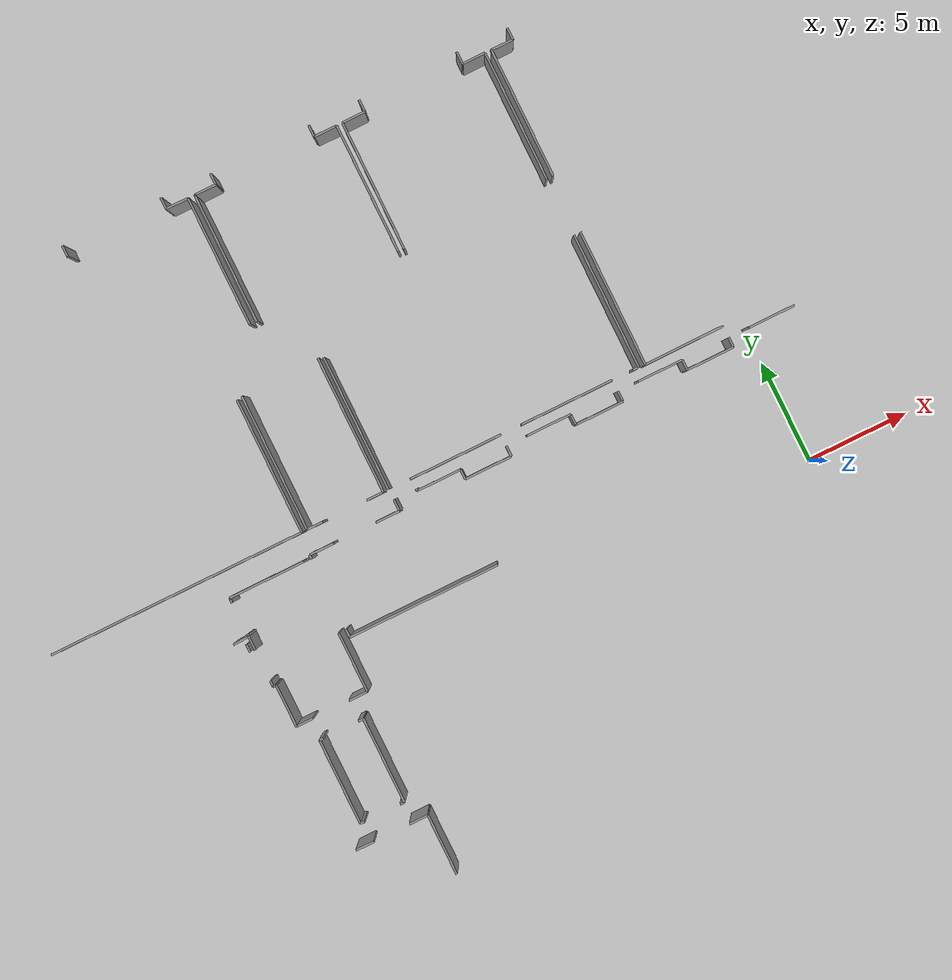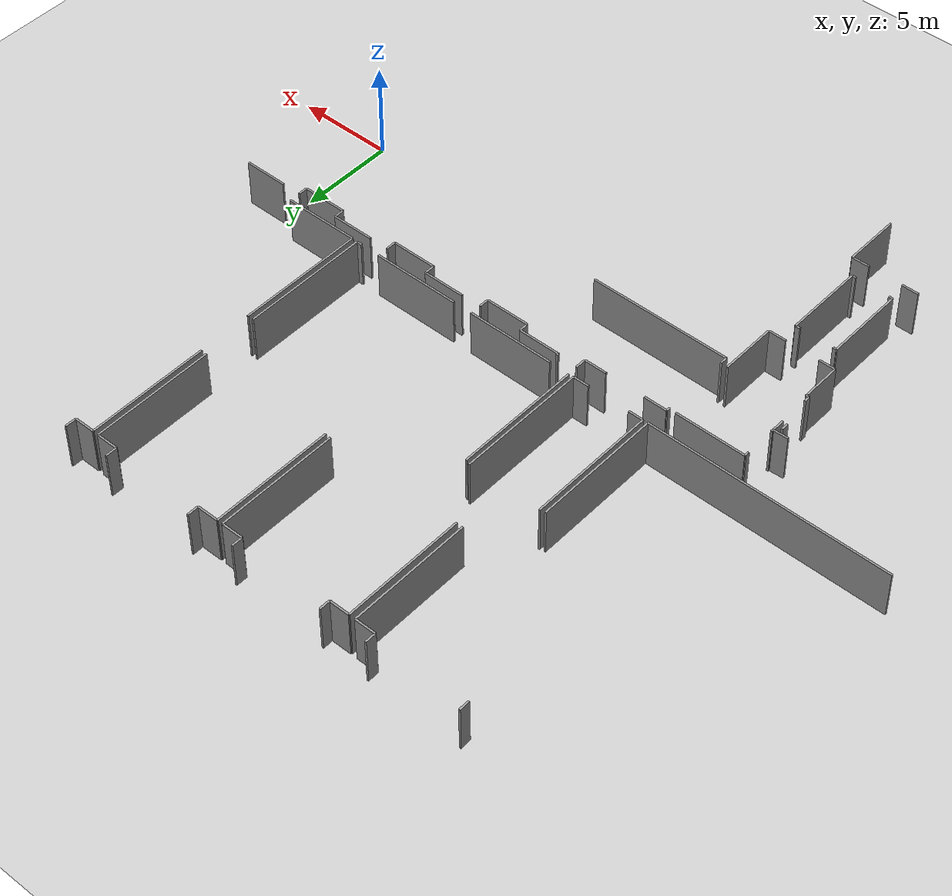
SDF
<sdf version="1.6">
 <world name="default">
  <model name="ground_plane">
   <static>1</static>
   <link name="link">
    <collision name="collision">
     <geometry><plane><normal>0 0 1</normal><size>100 100</size></plane></geometry>
     <surface><friction><ode><mu>100</mu><mu2>50</mu2></ode></friction></surface>
    </collision>
    <visual name="visual">
     <cast_shadows>0</cast_shadows>
     <geometry><plane><normal>0 0 1</normal><size>100 100</size></plane></geometry>
     <material>
      <script><uri>file://media/materials/scripts/gazebo.material</uri><name>Gazebo/Grey</name></script>
     </material>
    </visual>
   </link>
  </model>
  <model name="50045229">
   <static>1</static>
   <link name="Wall_26">
    <collision name="Wall_26_Collision">
     <geometry><box><size>6.7198466791 0.1 2.5</size></box></geometry>
     <pose>3.35992333955 0 1.25 0 0 0</pose>
    </collision>
    <visual name="Wall_26_Visual">
     <pose>3.35992333955 0 1.25 0 0 0</pose>
     <geometry><box><size>6.7198466791 0.1 2.5</size></box></geometry>
     <material>
      <script><uri>file://media/materials/scripts/gazebo.material</uri><name>Gazebo/Grey</name></script>
      <ambient>1 1 1 1</ambient>
     </material>
    </visual>
    <pose>28.746906294 -9.62964373199 0 0 0 -1.57079632679</pose>
   </link>
   <link name="Wall_27">
    <collision name="Wall_27_Collision">
     <geometry><box><size>0.831968929673 0.1 2.5</size></box></geometry>
     <pose>0.415984464836 0 1.25 0 0 0</pose>
    </collision>
    <visual name="Wall_27_Visual">
     <pose>0.415984464836 0 1.25 0 0 0</pose>
     <geometry><box><size>0.831968929673 0.1 2.5</size></box></geometry>
     <material>
      <script><uri>file://media/materials/scripts/gazebo.material</uri><name>Gazebo/Grey</name></script>
      <ambient>1 1 1 1</ambient>
     </material>
    </visual>
    <pose>28.746906294 -16.3494904111 0 0 0 3.14159265359</pose>
   </link>
   <link name="Wall_28">
    <collision name="Wall_28_Collision">
     <geometry><box><size>0.786911878562 0.1 2.5</size></box></geometry>
     <pose>0.393455939281 0 1.25 0 0 0</pose>
    </collision>
    <visual name="Wall_28_Visual">
     <pose>0.393455939281 0 1.25 0 0 0</pose>
     <geometry><box><size>0.786911878562 0.1 2.5</size></box></geometry>
     <material>
      <script><uri>file://media/materials/scripts/gazebo.material</uri><name>Gazebo/Grey</name></script>
      <ambient>1 1 1 1</ambient>
     </material>
    </visual>
    <pose>25.7049841983 -16.3494904111 0 0 0 3.14159265359</pose>
   </link>
   <link name="Wall_29">
    <collision name="Wall_29_Collision">
     <geometry><box><size>6.68456256584 0.1 2.5</size></box></geometry>
     <pose>3.34228128292 0 1.25 0 0 0</pose>
    </collision>
    <visual name="Wall_29_Visual">
     <pose>3.34228128292 0 1.25 0 0 0</pose>
     <geometry><box><size>6.68456256584 0.1 2.5</size></box></geometry>
     <material>
      <script><uri>file://media/materials/scripts/gazebo.material</uri><name>Gazebo/Grey</name></script>
      <ambient>1 1 1 1</ambient>
     </material>
    </visual>
    <pose>24.9180723197 -16.3494904111 0 0 0 1.57079632679</pose>
   </link>
   <link name="Wall_38">
    <collision name="Wall_38_Collision">
     <geometry><box><size>0.544365330186 0.1 2.5</size></box></geometry>
     <pose>0.272182665093 0 1.25 0 0 0</pose>
    </collision>
    <visual name="Wall_38_Visual">
     <pose>0.272182665093 0 1.25 0 0 0</pose>
     <geometry><box><size>0.544365330186 0.1 2.5</size></box></geometry>
     <material>
      <script><uri>file://media/materials/scripts/gazebo.material</uri><name>Gazebo/Grey</name></script>
      <ambient>1 1 1 1</ambient>
     </material>
    </visual>
    <pose>20.6436177639 -0.573303379913 0 0 0 1.57079632679</pose>
   </link>
   <link name="Wall_39">
    <collision name="Wall_39_Collision">
     <geometry><box><size>0.566068867481 0.1 2.5</size></box></geometry>
     <pose>0.283034433741 0 1.25 0 0 0</pose>
    </collision>
    <visual name="Wall_39_Visual">
     <pose>0.283034433741 0 1.25 0 0 0</pose>
     <geometry><box><size>0.566068867481 0.1 2.5</size></box></geometry>
     <material>
      <script><uri>file://media/materials/scripts/gazebo.material</uri><name>Gazebo/Grey</name></script>
      <ambient>1 1 1 1</ambient>
     </material>
    </visual>
    <pose>25.5781898488 -0.0289380497278 0 0 0 -1.57079632679</pose>
   </link>
   <link name="Wall_40">
    <collision name="Wall_40_Collision">
     <geometry><box><size>1.08847681783 0.1 2.5</size></box></geometry>
     <pose>0.544238408915 0 1.25 0 0 0</pose>
    </collision>
    <visual name="Wall_40_Visual">
     <pose>0.544238408915 0 1.25 0 0 0</pose>
     <geometry><box><size>1.08847681783 0.1 2.5</size></box></geometry>
     <material>
      <script><uri>file://media/materials/scripts/gazebo.material</uri><name>Gazebo/Grey</name></script>
      <ambient>1 1 1 1</ambient>
     </material>
    </visual>
    <pose>25.5781898488 -0.595006917209 0 0 0 0.0</pose>
   </link>
   <link name="Wall_41">
    <collision name="Wall_41_Collision">
     <geometry><box><size>6.3277868738 0.1 2.5</size></box></geometry>
     <pose>3.1638934369 0 1.25 0 0 0</pose>
    </collision>
    <visual name="Wall_41_Visual">
     <pose>3.1638934369 0 1.25 0 0 0</pose>
     <geometry><box><size>6.3277868738 0.1 2.5</size></box></geometry>
     <material>
      <script><uri>file://media/materials/scripts/gazebo.material</uri><name>Gazebo/Grey</name></script>
      <ambient>1 1 1 1</ambient>
     </material>
    </visual>
    <pose>26.6666666667 -0.595006917209 0 0 0 -1.57079632679</pose>
   </link>
   <link name="Wall_42">
    <collision name="Wall_42_Collision">
     <geometry><box><size>6.34060592215 0.1 2.5</size></box></geometry>
     <pose>3.17030296107 0 1.25 0 0 0</pose>
    </collision>
    <visual name="Wall_42_Visual">
     <pose>3.17030296107 0 1.25 0 0 0</pose>
     <geometry><box><size>6.34060592215 0.1 2.5</size></box></geometry>
     <material>
      <script><uri>file://media/materials/scripts/gazebo.material</uri><name>Gazebo/Grey</name></script>
      <ambient>1 1 1 1</ambient>
     </material>
    </visual>
    <pose>26.9995811598 -6.93675513079 0 0 0 1.57079632679</pose>
   </link>
   <link name="Wall_43">
    <collision name="Wall_43_Collision">
     <geometry><box><size>1.06372717004 0.1 2.5</size></box></geometry>
     <pose>0.531863585018 0 1.25 0 0 0</pose>
    </collision>
    <visual name="Wall_43_Visual">
     <pose>0.531863585018 0 1.25 0 0 0</pose>
     <geometry><box><size>1.06372717004 0.1 2.5</size></box></geometry>
     <material>
      <script><uri>file://media/materials/scripts/gazebo.material</uri><name>Gazebo/Grey</name></script>
      <ambient>1 1 1 1</ambient>
     </material>
    </visual>
    <pose>26.9995811598 -0.596149208646 0 0 0 0.0</pose>
   </link>
   <link name="Wall_44">
    <collision name="Wall_44_Collision">
     <geometry><box><size>0.565180418586 0.1 2.5</size></box></geometry>
     <pose>0.282590209293 0 1.25 0 0 0</pose>
    </collision>
    <visual name="Wall_44_Visual">
     <pose>0.282590209293 0 1.25 0 0 0</pose>
     <geometry><box><size>0.565180418586 0.1 2.5</size></box></geometry>
     <material>
      <script><uri>file://media/materials/scripts/gazebo.material</uri><name>Gazebo/Grey</name></script>
      <ambient>1 1 1 1</ambient>
     </material>
    </visual>
    <pose>28.0633083298 -0.596149208646 0 0 0 1.57079632679</pose>
   </link>
   <link name="Wall_45">
    <collision name="Wall_45_Collision">
     <geometry><box><size>0.570638033228 0.1 2.5</size></box></geometry>
     <pose>0.285319016614 0 1.25 0 0 0</pose>
    </collision>
    <visual name="Wall_45_Visual">
     <pose>0.285319016614 0 1.25 0 0 0</pose>
     <geometry><box><size>0.570638033228 0.1 2.5</size></box></geometry>
     <material>
      <script><uri>file://media/materials/scripts/gazebo.material</uri><name>Gazebo/Grey</name></script>
      <ambient>1 1 1 1</ambient>
     </material>
    </visual>
    <pose>32.9907728236 -0.0309687900595 0 0 0 -1.57079632679</pose>
   </link>
   <link name="Wall_46">
    <collision name="Wall_46_Collision">
     <geometry><box><size>1.12477630126 0.1 2.5</size></box></geometry>
     <pose>0.56238815063 0 1.25 0 0 0</pose>
    </collision>
    <visual name="Wall_46_Visual">
     <pose>0.56238815063 0 1.25 0 0 0</pose>
     <geometry><box><size>1.12477630126 0.1 2.5</size></box></geometry>
     <material>
      <script><uri>file://media/materials/scripts/gazebo.material</uri><name>Gazebo/Grey</name></script>
      <ambient>1 1 1 1</ambient>
     </material>
    </visual>
    <pose>32.9907728236 -0.601606823288 0 0 0 0.0</pose>
   </link>
   <link name="Wall_47">
    <collision name="Wall_47_Collision">
     <geometry><box><size>6.30938328955 0.1 2.5</size></box></geometry>
     <pose>3.15469164477 0 1.25 0 0 0</pose>
    </collision>
    <visual name="Wall_47_Visual">
     <pose>3.15469164477 0 1.25 0 0 0</pose>
     <geometry><box><size>6.30938328955 0.1 2.5</size></box></geometry>
     <material>
      <script><uri>file://media/materials/scripts/gazebo.material</uri><name>Gazebo/Grey</name></script>
      <ambient>1 1 1 1</ambient>
     </material>
    </visual>
    <pose>34.1155491249 -0.601606823288 0 0 0 -1.57079632679</pose>
   </link>
   <link name="Wall_48">
    <collision name="Wall_48_Collision">
     <geometry><box><size>6.34936348983 0.1 2.5</size></box></geometry>
     <pose>3.17468174491 0 1.25 0 0 0</pose>
    </collision>
    <visual name="Wall_48_Visual">
     <pose>3.17468174491 0 1.25 0 0 0</pose>
     <geometry><box><size>6.34936348983 0.1 2.5</size></box></geometry>
     <material>
      <script><uri>file://media/materials/scripts/gazebo.material</uri><name>Gazebo/Grey</name></script>
      <ambient>1 1 1 1</ambient>
     </material>
    </visual>
    <pose>34.4049296222 -6.94437040704 0 0 0 1.57079632679</pose>
   </link>
   <link name="Wall_49">
    <collision name="Wall_49_Collision">
     <geometry><box><size>1.12236479712 0.1 2.5</size></box></geometry>
     <pose>0.561182398558 0 1.25 0 0 0</pose>
    </collision>
    <visual name="Wall_49_Visual">
     <pose>0.561182398558 0 1.25 0 0 0</pose>
     <geometry><box><size>1.12236479712 0.1 2.5</size></box></geometry>
     <material>
      <script><uri>file://media/materials/scripts/gazebo.material</uri><name>Gazebo/Grey</name></script>
      <ambient>1 1 1 1</ambient>
     </material>
    </visual>
    <pose>34.4049296222 -0.595006917209 0 0 0 0.0</pose>
   </link>
   <link name="Wall_50">
    <collision name="Wall_50_Collision">
     <geometry><box><size>0.595006917209 0.1 2.5</size></box></geometry>
     <pose>0.297503458605 0 1.25 0 0 0</pose>
    </collision>
    <visual name="Wall_50_Visual">
     <pose>0.297503458605 0 1.25 0 0 0</pose>
     <geometry><box><size>0.595006917209 0.1 2.5</size></box></geometry>
     <material>
      <script><uri>file://media/materials/scripts/gazebo.material</uri><name>Gazebo/Grey</name></script>
      <ambient>1 1 1 1</ambient>
     </material>
    </visual>
    <pose>35.5272944193 -0.595006917209 0 0 0 1.57079632679</pose>
   </link>
   <link name="Wall_51">
    <collision name="Wall_51_Collision">
     <geometry><box><size>0.595006917209 0.1 2.5</size></box></geometry>
     <pose>0.297503458605 0 1.25 0 0 0</pose>
    </collision>
    <visual name="Wall_51_Visual">
     <pose>0.297503458605 0 1.25 0 0 0</pose>
     <geometry><box><size>0.595006917209 0.1 2.5</size></box></geometry>
     <material>
      <script><uri>file://media/materials/scripts/gazebo.material</uri><name>Gazebo/Grey</name></script>
      <ambient>1 1 1 1</ambient>
     </material>
    </visual>
    <pose>40.4255670208 -0.0 0 0 0 -1.57079632679</pose>
   </link>
   <link name="Wall_52">
    <collision name="Wall_52_Collision">
     <geometry><box><size>1.13201081369 0.1 2.5</size></box></geometry>
     <pose>0.566005406846 0 1.25 0 0 0</pose>
    </collision>
    <visual name="Wall_52_Visual">
     <pose>0.566005406846 0 1.25 0 0 0</pose>
     <geometry><box><size>1.13201081369 0.1 2.5</size></box></geometry>
     <material>
      <script><uri>file://media/materials/scripts/gazebo.material</uri><name>Gazebo/Grey</name></script>
      <ambient>1 1 1 1</ambient>
     </material>
    </visual>
    <pose>40.4255670208 -0.595006917209 0 0 0 0.0</pose>
   </link>
   <link name="Wall_53">
    <collision name="Wall_53_Collision">
     <geometry><box><size>6.31598319562 0.1 2.5</size></box></geometry>
     <pose>3.15799159781 0 1.25 0 0 0</pose>
    </collision>
    <visual name="Wall_53_Visual">
     <pose>3.15799159781 0 1.25 0 0 0</pose>
     <geometry><box><size>6.31598319562 0.1 2.5</size></box></geometry>
     <material>
      <script><uri>file://media/materials/scripts/gazebo.material</uri><name>Gazebo/Grey</name></script>
      <ambient>1 1 1 1</ambient>
     </material>
    </visual>
    <pose>41.5575778345 -0.595006917209 0 0 0 -1.57079632679</pose>
   </link>
   <link name="Wall_54">
    <collision name="Wall_54_Collision">
     <geometry><box><size>6.32309078678 0.1 2.5</size></box></geometry>
     <pose>3.16154539339 0 1.25 0 0 0</pose>
    </collision>
    <visual name="Wall_54_Visual">
     <pose>3.16154539339 0 1.25 0 0 0</pose>
     <geometry><box><size>6.32309078678 0.1 2.5</size></box></geometry>
     <material>
      <script><uri>file://media/materials/scripts/gazebo.material</uri><name>Gazebo/Grey</name></script>
      <ambient>1 1 1 1</ambient>
     </material>
    </visual>
    <pose>41.8694233967 -6.93015522471 0 0 0 1.57079632679</pose>
   </link>
   <link name="Wall_55">
    <collision name="Wall_55_Collision">
     <geometry><box><size>1.07502316313 0.1 2.5</size></box></geometry>
     <pose>0.537511581566 0 1.25 0 0 0</pose>
    </collision>
    <visual name="Wall_55_Visual">
     <pose>0.537511581566 0 1.25 0 0 0</pose>
     <geometry><box><size>1.07502316313 0.1 2.5</size></box></geometry>
     <material>
      <script><uri>file://media/materials/scripts/gazebo.material</uri><name>Gazebo/Grey</name></script>
      <ambient>1 1 1 1</ambient>
     </material>
    </visual>
    <pose>41.8694233967 -0.607064437929 0 0 0 0.0</pose>
   </link>
   <link name="Wall_56">
    <collision name="Wall_56_Collision">
     <geometry><box><size>0.587137798424 0.1 2.5</size></box></geometry>
     <pose>0.293568899212 0 1.25 0 0 0</pose>
    </collision>
    <visual name="Wall_56_Visual">
     <pose>0.293568899212 0 1.25 0 0 0</pose>
     <geometry><box><size>0.587137798424 0.1 2.5</size></box></geometry>
     <material>
      <script><uri>file://media/materials/scripts/gazebo.material</uri><name>Gazebo/Grey</name></script>
      <ambient>1 1 1 1</ambient>
     </material>
    </visual>
    <pose>42.9444465598 -0.607064437929 0 0 0 1.57079632679</pose>
   </link>
   <link name="Wall_124">
    <collision name="Wall_124_Collision">
     <geometry><box><size>6.64826308241 0.1 2.5</size></box></geometry>
     <pose>3.3241315412 0 1.25 0 0 0</pose>
    </collision>
    <visual name="Wall_124_Visual">
     <pose>3.3241315412 0 1.25 0 0 0</pose>
     <geometry><box><size>6.64826308241 0.1 2.5</size></box></geometry>
     <material>
      <script><uri>file://media/materials/scripts/gazebo.material</uri><name>Gazebo/Grey</name></script>
      <ambient>1 1 1 1</ambient>
     </material>
    </visual>
    <pose>41.8605389077 -16.3795707523 0 0 0 1.57079632679</pose>
   </link>
   <link name="Wall_127">
    <collision name="Wall_127_Collision">
     <geometry><box><size>3.91913579851 0.1 2.5</size></box></geometry>
     <pose>1.95956789925 0 1.25 0 0 0</pose>
    </collision>
    <visual name="Wall_127_Visual">
     <pose>1.95956789925 0 1.25 0 0 0</pose>
     <geometry><box><size>3.91913579851 0.1 2.5</size></box></geometry>
     <material>
      <script><uri>file://media/materials/scripts/gazebo.material</uri><name>Gazebo/Grey</name></script>
      <ambient>1 1 1 1</ambient>
     </material>
    </visual>
    <pose>45.7796139055 -16.3577402937 0 0 0 -3.13602240224</pose>
   </link>
   <link name="Wall_128">
    <collision name="Wall_128_Collision">
     <geometry><box><size>6.60485600782 0.1 2.5</size></box></geometry>
     <pose>3.30242800391 0 1.25 0 0 0</pose>
    </collision>
    <visual name="Wall_128_Visual">
     <pose>3.30242800391 0 1.25 0 0 0</pose>
     <geometry><box><size>6.60485600782 0.1 2.5</size></box></geometry>
     <material>
      <script><uri>file://media/materials/scripts/gazebo.material</uri><name>Gazebo/Grey</name></script>
      <ambient>1 1 1 1</ambient>
     </material>
    </visual>
    <pose>29.0006219142 -16.3370521266 0 0 0 1.57079632679</pose>
   </link>
   <link name="Wall_129">
    <collision name="Wall_129_Collision">
     <geometry><box><size>6.61970579649 0.1 2.5</size></box></geometry>
     <pose>3.30985289825 0 1.25 0 0 0</pose>
    </collision>
    <visual name="Wall_129_Visual">
     <pose>3.30985289825 0 1.25 0 0 0</pose>
     <geometry><box><size>6.61970579649 0.1 2.5</size></box></geometry>
     <material>
      <script><uri>file://media/materials/scripts/gazebo.material</uri><name>Gazebo/Grey</name></script>
      <ambient>1 1 1 1</ambient>
     </material>
    </visual>
    <pose>41.5485664242 -9.73219611875 0 0 0 -1.57079632679</pose>
   </link>
   <link name="Wall_130">
    <collision name="Wall_130_Collision">
     <geometry><box><size>0.286715150592 0.1 2.5</size></box></geometry>
     <pose>0.143357575296 0 1.25 0 0 0</pose>
    </collision>
    <visual name="Wall_130_Visual">
     <pose>0.143357575296 0 1.25 0 0 0</pose>
     <geometry><box><size>0.286715150592 0.1 2.5</size></box></geometry>
     <material>
      <script><uri>file://media/materials/scripts/gazebo.material</uri><name>Gazebo/Grey</name></script>
      <ambient>1 1 1 1</ambient>
     </material>
    </visual>
    <pose>41.5485664242 -16.3519019152 0 0 0 3.14159265359</pose>
   </link>
   <link name="Wall_131">
    <collision name="Wall_131_Collision">
     <geometry><box><size>4.56243891914 0.1 2.5</size></box></geometry>
     <pose>2.28121945957 0 1.25 0 0 0</pose>
    </collision>
    <visual name="Wall_131_Visual">
     <pose>2.28121945957 0 1.25 0 0 0</pose>
     <geometry><box><size>4.56243891914 0.1 2.5</size></box></geometry>
     <material>
      <script><uri>file://media/materials/scripts/gazebo.material</uri><name>Gazebo/Grey</name></script>
      <ambient>1 1 1 1</ambient>
     </material>
    </visual>
    <pose>40.2254121768 -16.3519019152 0 0 0 3.14159265359</pose>
   </link>
   <link name="Wall_132">
    <collision name="Wall_132_Collision">
     <geometry><box><size>4.5673888487 0.1 2.5</size></box></geometry>
     <pose>2.28369442435 0 1.25 0 0 0</pose>
    </collision>
    <visual name="Wall_132_Visual">
     <pose>2.28369442435 0 1.25 0 0 0</pose>
     <geometry><box><size>4.5673888487 0.1 2.5</size></box></geometry>
     <material>
      <script><uri>file://media/materials/scripts/gazebo.material</uri><name>Gazebo/Grey</name></script>
      <ambient>1 1 1 1</ambient>
     </material>
    </visual>
    <pose>34.6495069109 -16.3519019152 0 0 0 3.14159265359</pose>
   </link>
   <link name="Wall_134">
    <collision name="Wall_134_Collision">
     <geometry><box><size>6.63506327025 0.1 2.5</size></box></geometry>
     <pose>3.31753163513 0 1.25 0 0 0</pose>
    </collision>
    <visual name="Wall_134_Visual">
     <pose>3.31753163513 0 1.25 0 0 0</pose>
     <geometry><box><size>6.63506327025 0.1 2.5</size></box></geometry>
     <material>
      <script><uri>file://media/materials/scripts/gazebo.material</uri><name>Gazebo/Grey</name></script>
      <ambient>1 1 1 1</ambient>
     </material>
    </visual>
    <pose>24.6521722575 -9.72407315742 0 0 0 -1.57079632679</pose>
   </link>
   <link name="Wall_135">
    <collision name="Wall_135_Collision">
     <geometry><box><size>12.5558138604 0.1 2.5</size></box></geometry>
     <pose>6.27790693019 0 1.25 0 0 0</pose>
    </collision>
    <visual name="Wall_135_Visual">
     <pose>6.27790693019 0 1.25 0 0 0</pose>
     <geometry><box><size>12.5558138604 0.1 2.5</size></box></geometry>
     <material>
      <script><uri>file://media/materials/scripts/gazebo.material</uri><name>Gazebo/Grey</name></script>
      <ambient>1 1 1 1</ambient>
     </material>
    </visual>
    <pose>24.6521722575 -16.3591364277 0 0 0 -3.14140059084</pose>
   </link>
   <link name="Wall_177">
    <collision name="Wall_177_Collision">
     <geometry><box><size>0.886291233548 0.1 2.5</size></box></geometry>
     <pose>0.443145616774 0 1.25 0 0 0</pose>
    </collision>
    <visual name="Wall_177_Visual">
     <pose>0.443145616774 0 1.25 0 0 0</pose>
     <geometry><box><size>0.886291233548 0.1 2.5</size></box></geometry>
     <material>
      <script><uri>file://media/materials/scripts/gazebo.material</uri><name>Gazebo/Grey</name></script>
      <ambient>1 1 1 1</ambient>
     </material>
    </visual>
    <pose>20.5576920636 -30.2964880884 0 0 0 0.0</pose>
   </link>
   <link name="Wall_178">
    <collision name="Wall_178_Collision">
     <geometry><box><size>0.919544606481 0.1 2.5</size></box></geometry>
     <pose>0.45977230324 0 1.25 0 0 0</pose>
    </collision>
    <visual name="Wall_178_Visual">
     <pose>0.45977230324 0 1.25 0 0 0</pose>
     <geometry><box><size>0.919544606481 0.1 2.5</size></box></geometry>
     <material>
      <script><uri>file://media/materials/scripts/gazebo.material</uri><name>Gazebo/Grey</name></script>
      <ambient>1 1 1 1</ambient>
     </material>
    </visual>
    <pose>23.2323040018 -30.2964880884 0 0 0 0.0</pose>
   </link>
   <link name="Wall_179">
    <collision name="Wall_179_Collision">
     <geometry><box><size>2.95980403356 0.1 2.5</size></box></geometry>
     <pose>1.47990201678 0 1.25 0 0 0</pose>
    </collision>
    <visual name="Wall_179_Visual">
     <pose>1.47990201678 0 1.25 0 0 0</pose>
     <geometry><box><size>2.95980403356 0.1 2.5</size></box></geometry>
     <material>
      <script><uri>file://media/materials/scripts/gazebo.material</uri><name>Gazebo/Grey</name></script>
      <ambient>1 1 1 1</ambient>
     </material>
    </visual>
    <pose>24.1518486083 -30.2964880884 0 0 0 -1.57079632679</pose>
   </link>
   <link name="Wall_221">
    <collision name="Wall_221_Collision">
     <geometry><box><size>4.17507520085 0.1 2.5</size></box></geometry>
     <pose>2.08753760043 0 1.25 0 0 0</pose>
    </collision>
    <visual name="Wall_221_Visual">
     <pose>2.08753760043 0 1.25 0 0 0</pose>
     <geometry><box><size>4.17507520085 0.1 2.5</size></box></geometry>
     <material>
      <script><uri>file://media/materials/scripts/gazebo.material</uri><name>Gazebo/Grey</name></script>
      <ambient>1 1 1 1</ambient>
     </material>
    </visual>
    <pose>21.2567744228 -29.2973638452 0 0 0 1.57079632679</pose>
   </link>
   <link name="Wall_222">
    <collision name="Wall_222_Collision">
     <geometry><box><size>0.183782000025 0.1 2.5</size></box></geometry>
     <pose>0.0918910000127 0 1.25 0 0 0</pose>
    </collision>
    <visual name="Wall_222_Visual">
     <pose>0.0918910000127 0 1.25 0 0 0</pose>
     <geometry><box><size>0.183782000025 0.1 2.5</size></box></geometry>
     <material>
      <script><uri>file://media/materials/scripts/gazebo.material</uri><name>Gazebo/Grey</name></script>
      <ambient>1 1 1 1</ambient>
     </material>
    </visual>
    <pose>21.2567744228 -25.1222886444 0 0 0 0.0</pose>
   </link>
   <link name="Wall_223">
    <collision name="Wall_223_Collision">
     <geometry><box><size>0.253842541472 0.1 2.5</size></box></geometry>
     <pose>0.126921270736 0 1.25 0 0 0</pose>
    </collision>
    <visual name="Wall_223_Visual">
     <pose>0.126921270736 0 1.25 0 0 0</pose>
     <geometry><box><size>0.253842541472 0.1 2.5</size></box></geometry>
     <material>
      <script><uri>file://media/materials/scripts/gazebo.material</uri><name>Gazebo/Grey</name></script>
      <ambient>1 1 1 1</ambient>
     </material>
    </visual>
    <pose>23.2031121096 -25.1222886444 0 0 0 0.0</pose>
   </link>
   <link name="Wall_224">
    <collision name="Wall_224_Collision">
     <geometry><box><size>4.18573658759 0.1 2.5</size></box></geometry>
     <pose>2.0928682938 0 1.25 0 0 0</pose>
    </collision>
    <visual name="Wall_224_Visual">
     <pose>2.0928682938 0 1.25 0 0 0</pose>
     <geometry><box><size>4.18573658759 0.1 2.5</size></box></geometry>
     <material>
      <script><uri>file://media/materials/scripts/gazebo.material</uri><name>Gazebo/Grey</name></script>
      <ambient>1 1 1 1</ambient>
     </material>
    </visual>
    <pose>23.456954651 -25.1222886444 0 0 0 -1.57079632679</pose>
   </link>
   <link name="Wall_225">
    <collision name="Wall_225_Collision">
     <geometry><box><size>0.20878549036 0.1 2.5</size></box></geometry>
     <pose>0.10439274518 0 1.25 0 0 0</pose>
    </collision>
    <visual name="Wall_225_Visual">
     <pose>0.10439274518 0 1.25 0 0 0</pose>
     <geometry><box><size>0.20878549036 0.1 2.5</size></box></geometry>
     <material>
      <script><uri>file://media/materials/scripts/gazebo.material</uri><name>Gazebo/Grey</name></script>
      <ambient>1 1 1 1</ambient>
     </material>
    </visual>
    <pose>23.456954651 -29.3080252319 0 0 0 3.14159265359</pose>
   </link>
   <link name="Wall_226">
    <collision name="Wall_226_Collision">
     <geometry><box><size>0.206649189096 0.1 2.5</size></box></geometry>
     <pose>0.103324594548 0 1.25 0 0 0</pose>
    </collision>
    <visual name="Wall_226_Visual">
     <pose>0.103324594548 0 1.25 0 0 0</pose>
     <geometry><box><size>0.206649189096 0.1 2.5</size></box></geometry>
     <material>
      <script><uri>file://media/materials/scripts/gazebo.material</uri><name>Gazebo/Grey</name></script>
      <ambient>1 1 1 1</ambient>
     </material>
    </visual>
    <pose>21.463148409 -29.3080252319 0 0 0 3.08997802088</pose>
   </link>
   <link name="Wall_227">
    <collision name="Wall_227_Collision">
     <geometry><box><size>2.06691289393 0.1 2.5</size></box></geometry>
     <pose>1.03345644697 0 1.25 0 0 0</pose>
    </collision>
    <visual name="Wall_227_Visual">
     <pose>1.03345644697 0 1.25 0 0 0</pose>
     <geometry><box><size>2.06691289393 0.1 2.5</size></box></geometry>
     <material>
      <script><uri>file://media/materials/scripts/gazebo.material</uri><name>Gazebo/Grey</name></script>
      <ambient>1 1 1 1</ambient>
     </material>
    </visual>
    <pose>20.5904377515 -24.1128837782 0 0 0 1.57079632679</pose>
   </link>
   <link name="Wall_228">
    <collision name="Wall_228_Collision">
     <geometry><box><size>0.15002094201 0.1 2.5</size></box></geometry>
     <pose>0.0750104710048 0 1.25 0 0 0</pose>
    </collision>
    <visual name="Wall_228_Visual">
     <pose>0.0750104710048 0 1.25 0 0 0</pose>
     <geometry><box><size>0.15002094201 0.1 2.5</size></box></geometry>
     <material>
      <script><uri>file://media/materials/scripts/gazebo.material</uri><name>Gazebo/Grey</name></script>
      <ambient>1 1 1 1</ambient>
     </material>
    </visual>
    <pose>20.5904377515 -22.0459708843 0 0 0 3.14159265359</pose>
   </link>
   <link name="Wall_229">
    <collision name="Wall_229_Collision">
     <geometry><box><size>0.297503458605 0.1 2.5</size></box></geometry>
     <pose>0.148751729302 0 1.25 0 0 0</pose>
    </collision>
    <visual name="Wall_229_Visual">
     <pose>0.148751729302 0 1.25 0 0 0</pose>
     <geometry><box><size>0.297503458605 0.1 2.5</size></box></geometry>
     <material>
      <script><uri>file://media/materials/scripts/gazebo.material</uri><name>Gazebo/Grey</name></script>
      <ambient>1 1 1 1</ambient>
     </material>
    </visual>
    <pose>20.4404168095 -22.0459708843 0 0 0 1.57079632679</pose>
   </link>
   <link name="Wall_230">
    <collision name="Wall_230_Collision">
     <geometry><box><size>0.781327342649 0.1 2.5</size></box></geometry>
     <pose>0.390663671325 0 1.25 0 0 0</pose>
    </collision>
    <visual name="Wall_230_Visual">
     <pose>0.390663671325 0 1.25 0 0 0</pose>
     <geometry><box><size>0.781327342649 0.1 2.5</size></box></geometry>
     <material>
      <script><uri>file://media/materials/scripts/gazebo.material</uri><name>Gazebo/Grey</name></script>
      <ambient>1 1 1 1</ambient>
     </material>
    </visual>
    <pose>20.4404168095 -20.2004086865 0 0 0 1.57079632679</pose>
   </link>
   <link name="Wall_231">
    <collision name="Wall_231_Collision">
     <geometry><box><size>0.246100343957 0.1 2.5</size></box></geometry>
     <pose>0.123050171978 0 1.25 0 0 0</pose>
    </collision>
    <visual name="Wall_231_Visual">
     <pose>0.123050171978 0 1.25 0 0 0</pose>
     <geometry><box><size>0.246100343957 0.1 2.5</size></box></geometry>
     <material>
      <script><uri>file://media/materials/scripts/gazebo.material</uri><name>Gazebo/Grey</name></script>
      <ambient>1 1 1 1</ambient>
     </material>
    </visual>
    <pose>20.4404168095 -17.8345962 0 0 0 1.57079632679</pose>
   </link>
   <link name="Wall_232">
    <collision name="Wall_232_Collision">
     <geometry><box><size>3.70990874361 0.1 2.5</size></box></geometry>
     <pose>1.8549543718 0 1.25 0 0 0</pose>
    </collision>
    <visual name="Wall_232_Visual">
     <pose>1.8549543718 0 1.25 0 0 0</pose>
     <geometry><box><size>3.70990874361 0.1 2.5</size></box></geometry>
     <material>
      <script><uri>file://media/materials/scripts/gazebo.material</uri><name>Gazebo/Grey</name></script>
      <ambient>1 1 1 1</ambient>
     </material>
    </visual>
    <pose>20.4404168095 -17.588495856 0 0 0 0.0</pose>
   </link>
   <link name="Wall_233">
    <collision name="Wall_233_Collision">
     <geometry><box><size>2.94635037886 0.1 2.5</size></box></geometry>
     <pose>1.47317518943 0 1.25 0 0 0</pose>
    </collision>
    <visual name="Wall_233_Visual">
     <pose>1.47317518943 0 1.25 0 0 0</pose>
     <geometry><box><size>2.94635037886 0.1 2.5</size></box></geometry>
     <material>
      <script><uri>file://media/materials/scripts/gazebo.material</uri><name>Gazebo/Grey</name></script>
      <ambient>1 1 1 1</ambient>
     </material>
    </visual>
    <pose>24.1503255531 -21.1600604145 0 0 0 -1.57079632679</pose>
   </link>
   <link name="Wall_234">
    <collision name="Wall_234_Collision">
     <geometry><box><size>0.921321504271 0.1 2.5</size></box></geometry>
     <pose>0.460660752135 0 1.25 0 0 0</pose>
    </collision>
    <visual name="Wall_234_Visual">
     <pose>0.460660752135 0 1.25 0 0 0</pose>
     <geometry><box><size>0.921321504271 0.1 2.5</size></box></geometry>
     <material>
      <script><uri>file://media/materials/scripts/gazebo.material</uri><name>Gazebo/Grey</name></script>
      <ambient>1 1 1 1</ambient>
     </material>
    </visual>
    <pose>24.1503255531 -24.1064107934 0 0 0 3.14159265359</pose>
   </link>
   <link name="Wall_235">
    <collision name="Wall_235_Collision">
     <geometry><box><size>0.84392435371 0.1 2.5</size></box></geometry>
     <pose>0.421962176855 0 1.25 0 0 0</pose>
    </collision>
    <visual name="Wall_235_Visual">
     <pose>0.421962176855 0 1.25 0 0 0</pose>
     <geometry><box><size>0.84392435371 0.1 2.5</size></box></geometry>
     <material>
      <script><uri>file://media/materials/scripts/gazebo.material</uri><name>Gazebo/Grey</name></script>
      <ambient>1 1 1 1</ambient>
     </material>
    </visual>
    <pose>21.4343372806 -24.1064107934 0 0 0 -3.13392247764</pose>
   </link>
   <link name="Wall_240">
    <collision name="Wall_240_Collision">
     <geometry><box><size>0.244577288708 0.1 2.5</size></box></geometry>
     <pose>0.122288644354 0 1.25 0 0 0</pose>
    </collision>
    <visual name="Wall_240_Visual">
     <pose>0.122288644354 0 1.25 0 0 0</pose>
     <geometry><box><size>0.244577288708 0.1 2.5</size></box></geometry>
     <material>
      <script><uri>file://media/materials/scripts/gazebo.material</uri><name>Gazebo/Grey</name></script>
      <ambient>1 1 1 1</ambient>
     </material>
    </visual>
    <pose>20.4553935194 -17.5900189113 0 0 0 -1.57079632679</pose>
   </link>
   <link name="Wall_241">
    <collision name="Wall_241_Collision">
     <geometry><box><size>0.115117592557 0.1 2.5</size></box></geometry>
     <pose>0.0575587962787 0 1.25 0 0 0</pose>
    </collision>
    <visual name="Wall_241_Visual">
     <pose>0.0575587962787 0 1.25 0 0 0</pose>
     <geometry><box><size>0.115117592557 0.1 2.5</size></box></geometry>
     <material>
      <script><uri>file://media/materials/scripts/gazebo.material</uri><name>Gazebo/Grey</name></script>
      <ambient>1 1 1 1</ambient>
     </material>
    </visual>
    <pose>20.4553935194 -19.4061353742 0 0 0 -1.57079632679</pose>
   </link>
   <link name="Wall_242">
    <collision name="Wall_242_Collision">
     <geometry><box><size>0.78774282534 0.1 2.5</size></box></geometry>
     <pose>0.39387141267 0 1.25 0 0 0</pose>
    </collision>
    <visual name="Wall_242_Visual">
     <pose>0.39387141267 0 1.25 0 0 0</pose>
     <geometry><box><size>0.78774282534 0.1 2.5</size></box></geometry>
     <material>
      <script><uri>file://media/materials/scripts/gazebo.material</uri><name>Gazebo/Grey</name></script>
      <ambient>1 1 1 1</ambient>
     </material>
    </visual>
    <pose>20.4553935194 -19.5212529668 0 0 0 -3.09565724779</pose>
   </link>
   <link name="Wall_248">
    <collision name="Wall_248_Collision">
     <geometry><box><size>0.392186726574 0.1 2.5</size></box></geometry>
     <pose>0.196093363287 0 1.25 0 0 0</pose>
    </collision>
    <visual name="Wall_248_Visual">
     <pose>0.196093363287 0 1.25 0 0 0</pose>
     <geometry><box><size>0.392186726574 0.1 2.5</size></box></geometry>
     <material>
      <script><uri>file://media/materials/scripts/gazebo.material</uri><name>Gazebo/Grey</name></script>
      <ambient>1 1 1 1</ambient>
     </material>
    </visual>
    <pose>20.1929203315 -19.7960375179 0 0 0 -1.57079632679</pose>
   </link>
   <link name="Wall_390">
    <collision name="Wall_390_Collision">
     <geometry><box><size>7.42108669992 0.1 2.5</size></box></geometry>
     <pose>3.71054334996 0 1.25 0 0 0</pose>
    </collision>
    <visual name="Wall_390_Visual">
     <pose>3.71054334996 0 1.25 0 0 0</pose>
     <geometry><box><size>7.42108669992 0.1 2.5</size></box></geometry>
     <material>
      <script><uri>file://media/materials/scripts/gazebo.material</uri><name>Gazebo/Grey</name></script>
      <ambient>1 1 1 1</ambient>
     </material>
    </visual>
    <pose>31.9314878981 -21.5579585983 0 0 0 3.14159265359</pose>
   </link>
   <link name="Wall_391">
    <collision name="Wall_391_Collision">
     <geometry><box><size>0.380763812207 0.1 2.5</size></box></geometry>
     <pose>0.190381906104 0 1.25 0 0 0</pose>
    </collision>
    <visual name="Wall_391_Visual">
     <pose>0.190381906104 0 1.25 0 0 0</pose>
     <geometry><box><size>0.380763812207 0.1 2.5</size></box></geometry>
     <material>
      <script><uri>file://media/materials/scripts/gazebo.material</uri><name>Gazebo/Grey</name></script>
      <ambient>1 1 1 1</ambient>
     </material>
    </visual>
    <pose>24.5104011981 -21.5579585983 0 0 0 1.57079632679</pose>
   </link>
   <link name="Wall_392">
    <collision name="Wall_392_Collision">
     <geometry><box><size>0.211070073234 0.1 2.5</size></box></geometry>
     <pose>0.105535036617 0 1.25 0 0 0</pose>
    </collision>
    <visual name="Wall_392_Visual">
     <pose>0.105535036617 0 1.25 0 0 0</pose>
     <geometry><box><size>0.211070073234 0.1 2.5</size></box></geometry>
     <material>
      <script><uri>file://media/materials/scripts/gazebo.material</uri><name>Gazebo/Grey</name></script>
      <ambient>1 1 1 1</ambient>
     </material>
    </visual>
    <pose>24.5104011981 -17.6475142469 0 0 0 1.57079632679</pose>
   </link>
   <link name="Wall_393">
    <collision name="Wall_393_Collision">
     <geometry><box><size>1.20422901674 0.1 2.5</size></box></geometry>
     <pose>0.60211450837 0 1.25 0 0 0</pose>
    </collision>
    <visual name="Wall_393_Visual">
     <pose>0.60211450837 0 1.25 0 0 0</pose>
     <geometry><box><size>1.20422901674 0.1 2.5</size></box></geometry>
     <material>
      <script><uri>file://media/materials/scripts/gazebo.material</uri><name>Gazebo/Grey</name></script>
      <ambient>1 1 1 1</ambient>
     </material>
    </visual>
    <pose>24.5104011981 -17.4364441737 0 0 0 0.0</pose>
   </link>
   <link name="Wall_394">
    <collision name="Wall_394_Collision">
     <geometry><box><size>1.19305994492 0.1 2.5</size></box></geometry>
     <pose>0.596529972458 0 1.25 0 0 0</pose>
    </collision>
    <visual name="Wall_394_Visual">
     <pose>0.596529972458 0 1.25 0 0 0</pose>
     <geometry><box><size>1.19305994492 0.1 2.5</size></box></geometry>
     <material>
      <script><uri>file://media/materials/scripts/gazebo.material</uri><name>Gazebo/Grey</name></script>
      <ambient>1 1 1 1</ambient>
     </material>
    </visual>
    <pose>27.8357384914 -17.4364441737 0 0 0 0.0</pose>
   </link>
   <link name="Wall_395">
    <collision name="Wall_395_Collision">
     <geometry><box><size>0.574572592621 0.1 2.5</size></box></geometry>
     <pose>0.28728629631 0 1.25 0 0 0</pose>
    </collision>
    <visual name="Wall_395_Visual">
     <pose>0.28728629631 0 1.25 0 0 0</pose>
     <geometry><box><size>0.574572592621 0.1 2.5</size></box></geometry>
     <material>
      <script><uri>file://media/materials/scripts/gazebo.material</uri><name>Gazebo/Grey</name></script>
      <ambient>1 1 1 1</ambient>
     </material>
    </visual>
    <pose>29.0287984363 -17.4364441737 0 0 0 1.57079632679</pose>
   </link>
   <link name="Wall_396">
    <collision name="Wall_396_Collision">
     <geometry><box><size>0.105090812169 0.1 2.5</size></box></geometry>
     <pose>0.0525454060846 0 1.25 0 0 0</pose>
    </collision>
    <visual name="Wall_396_Visual">
     <pose>0.0525454060846 0 1.25 0 0 0</pose>
     <geometry><box><size>0.105090812169 0.1 2.5</size></box></geometry>
     <material>
      <script><uri>file://media/materials/scripts/gazebo.material</uri><name>Gazebo/Grey</name></script>
      <ambient>1 1 1 1</ambient>
     </material>
    </visual>
    <pose>30.1330134917 -16.8618715811 0 0 0 -1.57079632679</pose>
   </link>
   <link name="Wall_397">
    <collision name="Wall_397_Collision">
     <geometry><box><size>2.18558428207 0.1 2.5</size></box></geometry>
     <pose>1.09279214103 0 1.25 0 0 0</pose>
    </collision>
    <visual name="Wall_397_Visual">
     <pose>1.09279214103 0 1.25 0 0 0</pose>
     <geometry><box><size>2.18558428207 0.1 2.5</size></box></geometry>
     <material>
      <script><uri>file://media/materials/scripts/gazebo.material</uri><name>Gazebo/Grey</name></script>
      <ambient>1 1 1 1</ambient>
     </material>
    </visual>
    <pose>30.1330134917 -16.9669623932 0 0 0 0.0</pose>
   </link>
   <link name="Wall_398">
    <collision name="Wall_398_Collision">
     <geometry><box><size>0.475700922718 0.1 2.5</size></box></geometry>
     <pose>0.237850461359 0 1.25 0 0 0</pose>
    </collision>
    <visual name="Wall_398_Visual">
     <pose>0.237850461359 0 1.25 0 0 0</pose>
     <geometry><box><size>0.475700922718 0.1 2.5</size></box></geometry>
     <material>
      <script><uri>file://media/materials/scripts/gazebo.material</uri><name>Gazebo/Grey</name></script>
      <ambient>1 1 1 1</ambient>
     </material>
    </visual>
    <pose>32.3185977738 -16.9669623932 0 0 0 -1.57079632679</pose>
   </link>
   <link name="Wall_399">
    <collision name="Wall_399_Collision">
     <geometry><box><size>2.31009404866 0.1 2.5</size></box></geometry>
     <pose>1.15504702433 0 1.25 0 0 0</pose>
    </collision>
    <visual name="Wall_399_Visual">
     <pose>1.15504702433 0 1.25 0 0 0</pose>
     <geometry><box><size>2.31009404866 0.1 2.5</size></box></geometry>
     <material>
      <script><uri>file://media/materials/scripts/gazebo.material</uri><name>Gazebo/Grey</name></script>
      <ambient>1 1 1 1</ambient>
     </material>
    </visual>
    <pose>32.3185977738 -17.4426633159 0 0 0 0.0</pose>
   </link>
   <link name="Wall_400">
    <collision name="Wall_400_Collision">
     <geometry><box><size>0.529388620239 0.1 2.5</size></box></geometry>
     <pose>0.264694310119 0 1.25 0 0 0</pose>
    </collision>
    <visual name="Wall_400_Visual">
     <pose>0.264694310119 0 1.25 0 0 0</pose>
     <geometry><box><size>0.529388620239 0.1 2.5</size></box></geometry>
     <material>
      <script><uri>file://media/materials/scripts/gazebo.material</uri><name>Gazebo/Grey</name></script>
      <ambient>1 1 1 1</ambient>
     </material>
    </visual>
    <pose>34.6286918225 -17.4426633159 0 0 0 1.57079632679</pose>
   </link>
   <link name="Wall_401">
    <collision name="Wall_401_Collision">
     <geometry><box><size>2.19599182627 0.1 2.5</size></box></geometry>
     <pose>1.09799591314 0 1.25 0 0 0</pose>
    </collision>
    <visual name="Wall_401_Visual">
     <pose>1.09799591314 0 1.25 0 0 0</pose>
     <geometry><box><size>2.19599182627 0.1 2.5</size></box></geometry>
     <material>
      <script><uri>file://media/materials/scripts/gazebo.material</uri><name>Gazebo/Grey</name></script>
      <ambient>1 1 1 1</ambient>
     </material>
    </visual>
    <pose>35.6698270063 -16.9132746957 0 0 0 0.0</pose>
   </link>
   <link name="Wall_402">
    <collision name="Wall_402_Collision">
     <geometry><box><size>0.523804084326 0.1 2.5</size></box></geometry>
     <pose>0.261902042163 0 1.25 0 0 0</pose>
    </collision>
    <visual name="Wall_402_Visual">
     <pose>0.261902042163 0 1.25 0 0 0</pose>
     <geometry><box><size>0.523804084326 0.1 2.5</size></box></geometry>
     <material>
      <script><uri>file://media/materials/scripts/gazebo.material</uri><name>Gazebo/Grey</name></script>
      <ambient>1 1 1 1</ambient>
     </material>
    </visual>
    <pose>37.8658188326 -16.9132746957 0 0 0 -1.57079632679</pose>
   </link>
   <link name="Wall_403">
    <collision name="Wall_403_Collision">
     <geometry><box><size>2.35997410806 0.1 2.5</size></box></geometry>
     <pose>1.17998705403 0 1.25 0 0 0</pose>
    </collision>
    <visual name="Wall_403_Visual">
     <pose>1.17998705403 0 1.25 0 0 0</pose>
     <geometry><box><size>2.35997410806 0.1 2.5</size></box></geometry>
     <material>
      <script><uri>file://media/materials/scripts/gazebo.material</uri><name>Gazebo/Grey</name></script>
      <ambient>1 1 1 1</ambient>
     </material>
    </visual>
    <pose>37.8658188326 -17.43707878 0 0 0 0.0</pose>
   </link>
   <link name="Wall_404">
    <collision name="Wall_404_Collision">
     <geometry><box><size>0.51745802079 0.1 2.5</size></box></geometry>
     <pose>0.258729010395 0 1.25 0 0 0</pose>
    </collision>
    <visual name="Wall_404_Visual">
     <pose>0.258729010395 0 1.25 0 0 0</pose>
     <geometry><box><size>0.51745802079 0.1 2.5</size></box></geometry>
     <material>
      <script><uri>file://media/materials/scripts/gazebo.material</uri><name>Gazebo/Grey</name></script>
      <ambient>1 1 1 1</ambient>
     </material>
    </visual>
    <pose>40.2257929406 -17.43707878 0 0 0 1.57079632679</pose>
   </link>
   <link name="Wall_405">
    <collision name="Wall_405_Collision">
     <geometry><box><size>2.21490309561 0.1 2.5</size></box></geometry>
     <pose>1.1074515478 0 1.25 0 0 0</pose>
    </collision>
    <visual name="Wall_405_Visual">
     <pose>1.1074515478 0 1.25 0 0 0</pose>
     <geometry><box><size>2.21490309561 0.1 2.5</size></box></geometry>
     <material>
      <script><uri>file://media/materials/scripts/gazebo.material</uri><name>Gazebo/Grey</name></script>
      <ambient>1 1 1 1</ambient>
     </material>
    </visual>
    <pose>41.2417977129 -16.9196207592 0 0 0 0.0</pose>
   </link>
   <link name="Wall_406">
    <collision name="Wall_406_Collision">
     <geometry><box><size>0.504765893716 0.1 2.5</size></box></geometry>
     <pose>0.252382946858 0 1.25 0 0 0</pose>
    </collision>
    <visual name="Wall_406_Visual">
     <pose>0.252382946858 0 1.25 0 0 0</pose>
     <geometry><box><size>0.504765893716 0.1 2.5</size></box></geometry>
     <material>
      <script><uri>file://media/materials/scripts/gazebo.material</uri><name>Gazebo/Grey</name></script>
      <ambient>1 1 1 1</ambient>
     </material>
    </visual>
    <pose>43.4567008085 -16.9196207592 0 0 0 -1.57079632679</pose>
   </link>
   <link name="Wall_407">
    <collision name="Wall_407_Collision">
     <geometry><box><size>2.32215156938 0.1 2.5</size></box></geometry>
     <pose>1.16107578469 0 1.25 0 0 0</pose>
    </collision>
    <visual name="Wall_407_Visual">
     <pose>1.16107578469 0 1.25 0 0 0</pose>
     <geometry><box><size>2.32215156938 0.1 2.5</size></box></geometry>
     <material>
      <script><uri>file://media/materials/scripts/gazebo.material</uri><name>Gazebo/Grey</name></script>
      <ambient>1 1 1 1</ambient>
     </material>
    </visual>
    <pose>43.4567008085 -17.424386653 0 0 0 0.0</pose>
   </link>
   <link name="Wall_408">
    <collision name="Wall_408_Collision">
     <geometry><box><size>0.492200687913 0.1 2.5</size></box></geometry>
     <pose>0.246100343957 0 1.25 0 0 0</pose>
    </collision>
    <visual name="Wall_408_Visual">
     <pose>0.246100343957 0 1.25 0 0 0</pose>
     <geometry><box><size>0.492200687913 0.1 2.5</size></box></geometry>
     <material>
      <script><uri>file://media/materials/scripts/gazebo.material</uri><name>Gazebo/Grey</name></script>
      <ambient>1 1 1 1</ambient>
     </material>
    </visual>
    <pose>45.7788523779 -17.424386653 0 0 0 1.57079632679</pose>
   </link>
   <link name="Wall_409">
    <collision name="Wall_409_Collision">
     <geometry><box><size>2.26541776136 0.1 2.5</size></box></geometry>
     <pose>1.13270888068 0 1.25 0 0 0</pose>
    </collision>
    <visual name="Wall_409_Visual">
     <pose>1.13270888068 0 1.25 0 0 0</pose>
     <geometry><box><size>2.26541776136 0.1 2.5</size></box></geometry>
     <material>
      <script><uri>file://media/materials/scripts/gazebo.material</uri><name>Gazebo/Grey</name></script>
      <ambient>1 1 1 1</ambient>
     </material>
    </visual>
    <pose>46.7947302288 -16.932185965 0 0 0 0.0</pose>
   </link>
   <pose>-46.95 23.68313724 0 0 0 0</pose>
  </model>
 </world>
</sdf>
